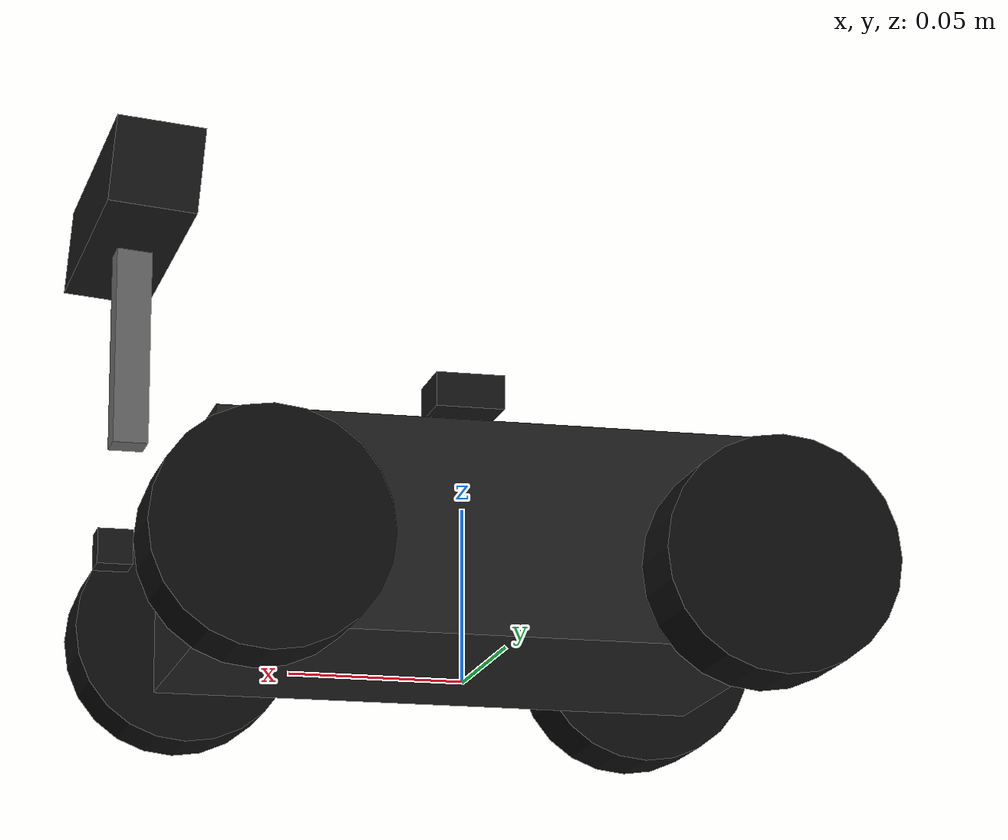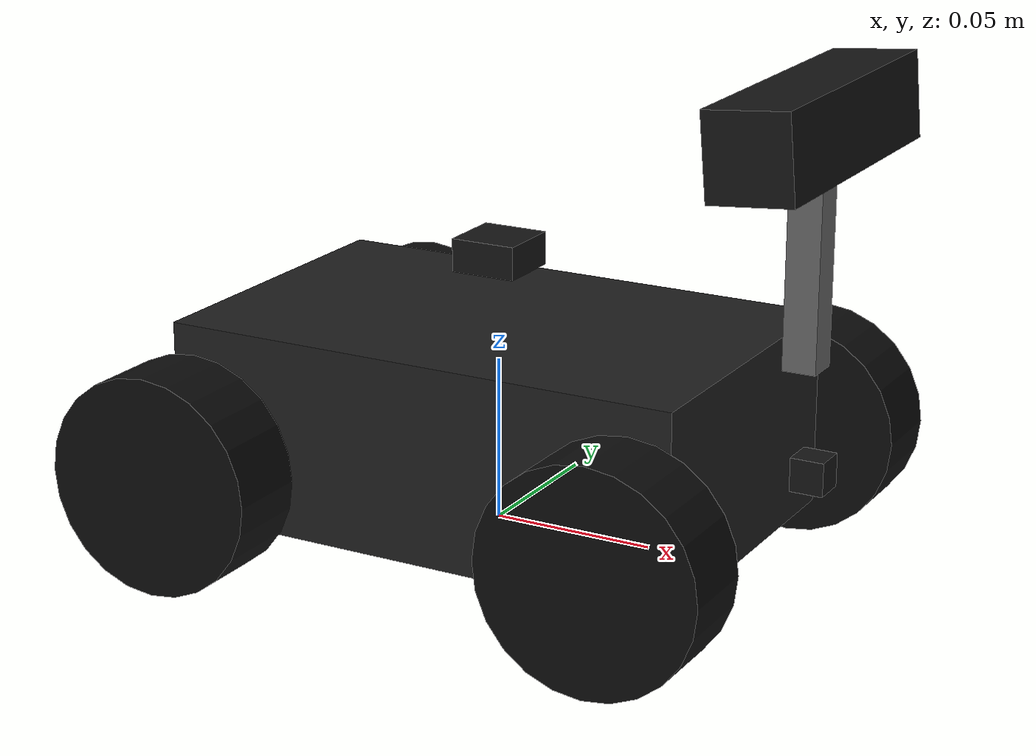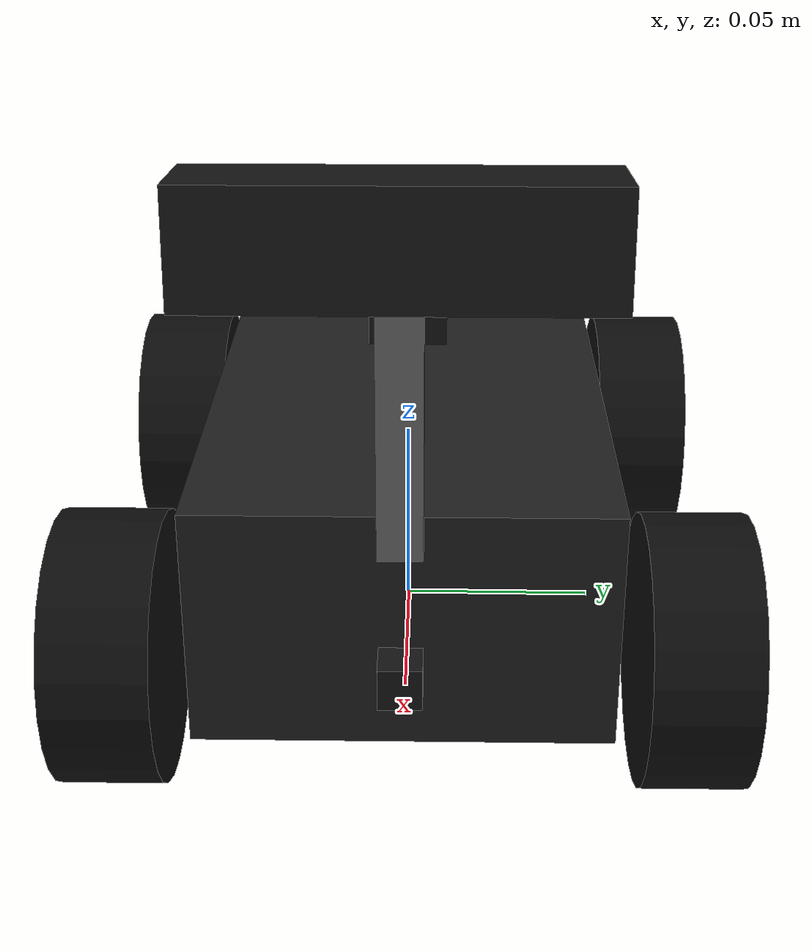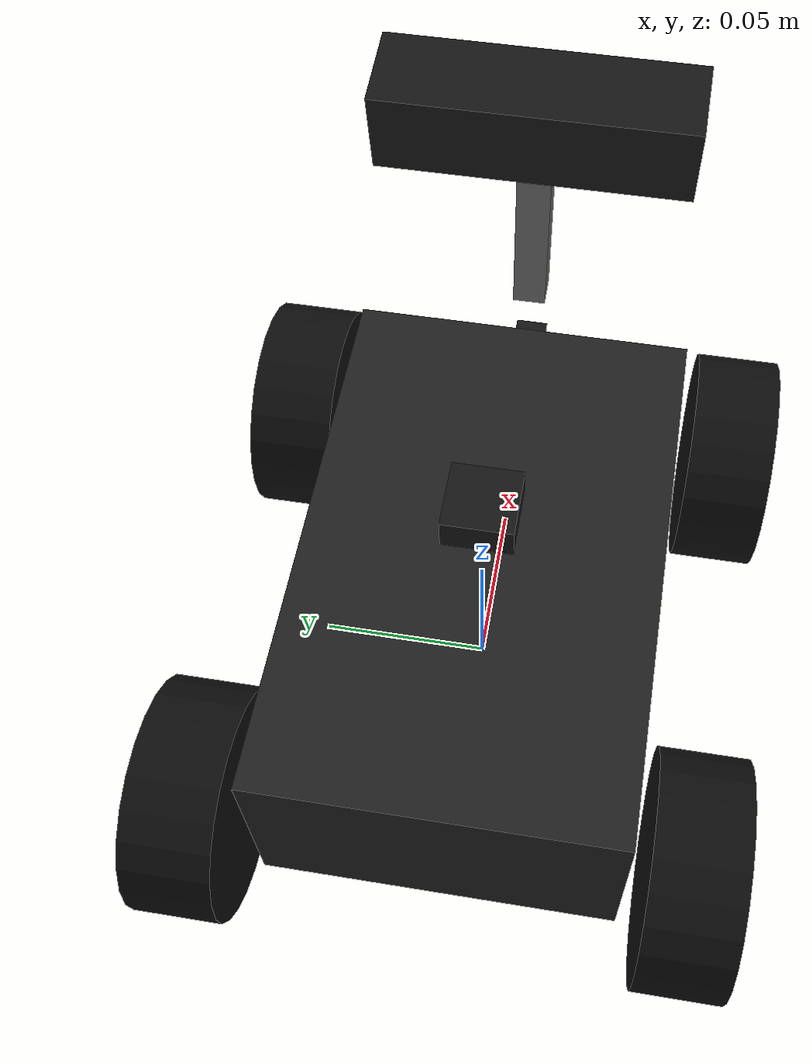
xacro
<?xml version="1.0"?>
<robot name="custom_bot" xmlns:xacro="http://www.ros.org/wiki/xacro">

  <!-- PARAMETERS - estimated from photo, adjust once you measure   -->
  <!-- the real chassis with calipers/tape measure                  -->
  <xacro:property name="base_length" value="0.161"/>  <!-- chassis STEP bbox ~161 mm (unreliable: raw STEP points) -->
  <xacro:property name="base_width"  value="0.102"/>  <!-- chassis STEP bbox ~102 mm body; wheels sit outside it -->
  <xacro:property name="base_height" value="0.06"/>
  <xacro:property name="base_mass"   value="1.5"/>    <!-- kg, board stack + frame -->

  <xacro:property name="wheel_radius" value="0.03305"/>  <!-- caliper: 66.1 mm diameter -->
  <xacro:property name="wheel_width"  value="0.0252"/> <!-- caliper: 25.2 mm -->
  <xacro:property name="wheel_mass"   value="0.08"/>  <!-- kg -->

  <xacro:property name="wheel_x_offset" value="0.07"/>  <!-- still a guess: measure fore/aft axle distance from chassis centre -->
  <xacro:property name="wheel_y_offset" value="0.0685"/> <!-- caliper: 137 mm track (tire centre to tire centre) / 2 -->
  <xacro:property name="wheel_z_offset" value="-0.01"/>

  <xacro:property name="camera_height_above_floor" value="0.132"/>
  <xacro:property name="camera_mount_height" value="${camera_height_above_floor - wheel_radius - base_height/2}"/>
  <xacro:property name="camera_x_offset" value="0.0969"/>
  <xacro:property name="camera_pitch" value="${-5 * pi / 180}"/>

  <!-- STEREO RIG. Baseline 0.0775 m comes from the stereo calibration (ruler check: ~75 mm, within 3 percent).
       The two imagers sit at +/- baseline/2 about the rig centre. -->
  <xacro:property name="stereo_baseline" value="0.0783"/>
  <xacro:property name="stereo_hfov"     value="1.5708"/>
  <xacro:property name="stereo_width"    value="640"/>
  <xacro:property name="stereo_height"   value="480"/>
  <xacro:property name="stereo_fps"      value="20.0"/>

  <!-- GPS antenna sits top-center, clear sky view. Placeholder height,
       adjust once the hardware team picks a final enclosure/mast. -->
  <xacro:property name="gps_z_offset" value="${base_height/2 + 0.02}"/>

  <!-- MATERIALS                                                     -->
  <material name="chassis_dark"><color rgba="0.12 0.12 0.12 1"/></material>
  <material name="wheel_yellow"><color rgba="0.9 0.8 0.1 1"/></material>
  <material name="wheel_black"><color rgba="0.05 0.05 0.05 1"/></material>
  <material name="sensor_black"><color rgba="0.08 0.08 0.08 1"/></material>
  <material name="bracket_gray"><color rgba="0.4 0.4 0.4 1"/></material>

  <!-- MACRO: WHEEL (yellow rim + black tire, matches photo)         -->
  <xacro:macro name="wheel" params="prefix x_reflect y_reflect">
    <link name="${prefix}_wheel_link">
      <visual>
        <origin xyz="0 0 0" rpy="1.5708 0 0"/>
        <geometry><cylinder radius="${wheel_radius}" length="${wheel_width}"/></geometry>
        <material name="wheel_black"/>
      </visual>
      <collision>
        <origin xyz="0 0 0" rpy="1.5708 0 0"/>
        <geometry><cylinder radius="${wheel_radius}" length="${wheel_width}"/></geometry>
      </collision>
      <inertial>
        <mass value="${wheel_mass}"/>
        <inertia ixx="0.00003" ixy="0" ixz="0" iyy="0.00003" iyz="0" izz="0.00003"/>
      </inertial>
    </link>

    <joint name="${prefix}_wheel_joint" type="continuous">
      <parent link="base_link"/>
      <child link="${prefix}_wheel_link"/>
      <origin xyz="${x_reflect*wheel_x_offset} ${y_reflect*wheel_y_offset} ${wheel_z_offset}" rpy="0 0 0"/>
      <axis xyz="0 1 0"/>
    </joint>
  </xacro:macro>

  <!-- BASE                                                          -->
  <link name="base_footprint"/>

  <link name="base_link">
    <visual>
      <geometry><box size="${base_length} ${base_width} ${base_height}"/></geometry>
      <material name="chassis_dark"/>
    </visual>
    <collision>
      <geometry><box size="${base_length} ${base_width} ${base_height}"/></geometry>
    </collision>
    <inertial>
      <mass value="${base_mass}"/>
      <inertia ixx="0.004" ixy="0" ixz="0" iyy="0.006" iyz="0" izz="0.008"/>
    </inertial>
  </link>

  <joint name="base_joint" type="fixed">
    <parent link="base_footprint"/>
    <child link="base_link"/>
    <origin xyz="0 0 ${wheel_radius}" rpy="0 0 0"/>
  </joint>

  <!-- Four independently driven wheels, wide stance like the photo -->
  <xacro:wheel prefix="front_left"  x_reflect="1"  y_reflect="1"/>
  <xacro:wheel prefix="front_right" x_reflect="1"  y_reflect="-1"/>
  <xacro:wheel prefix="rear_left"   x_reflect="-1" y_reflect="1"/>
  <xacro:wheel prefix="rear_right"  x_reflect="-1" y_reflect="-1"/>

  <!-- CAMERA MOUNT - raised bracket + camera, front of chassis      -->
  <link name="camera_bracket_link">
    <visual>
      <geometry><box size="0.01 0.01 ${camera_mount_height}"/></geometry>
      <material name="bracket_gray"/>
    </visual>
  </link>
  <joint name="camera_bracket_joint" type="fixed">
    <parent link="base_link"/>
    <child link="camera_bracket_link"/>
    <origin xyz="${camera_x_offset} 0 ${base_height/2 + camera_mount_height/2}" rpy="0 0 0"/>
  </joint>

  <link name="camera_link">
    <visual>
      <geometry><box size="0.025 0.09 0.025"/></geometry>
      <material name="sensor_black"/>
    </visual>
    <collision>
      <geometry><box size="0.025 0.09 0.025"/></geometry>
    </collision>
    <inertial>
      <mass value="0.05"/>
      <inertia ixx="0.00001" ixy="0" ixz="0" iyy="0.00001" iyz="0" izz="0.00001"/>
    </inertial>
  </link>
  <joint name="camera_joint" type="fixed">
    <parent link="camera_bracket_link"/>
    <child link="camera_link"/>
    <origin xyz="0 0 ${camera_mount_height/2}" rpy="0 ${camera_pitch} 0"/>
  </joint>

  <!-- STEREO PAIR: camera_link is the rig's center; the two imagers   -->
  <!-- sit at +/- stereo_baseline/2 along its Y axis (left = +Y, ROS   -->
  <!-- convention). Each imager is an x-forward link with a child      -->
  <!-- *_optical_link carrying the z-forward optical convention.       -->
  <!-- stereo_camera_node stamps its images with these optical frames  -->
  <!-- (camera_left_optical_link / camera_right_optical_link).         -->
  <xacro:macro name="stereo_imager" params="side y_offset">
    <link name="camera_${side}_link">
      <inertial>
        <mass value="0.01"/>
        <inertia ixx="0.000001" ixy="0" ixz="0" iyy="0.000001" iyz="0" izz="0.000001"/>
      </inertial>
    </link>
    <joint name="camera_${side}_joint" type="fixed">
      <parent link="camera_link"/>
      <child link="camera_${side}_link"/>
      <origin xyz="0 ${y_offset} 0" rpy="0 0 0"/>
    </joint>

    <link name="camera_${side}_optical_link"/>
    <joint name="camera_${side}_optical_joint" type="fixed">
      <parent link="camera_${side}_link"/>
      <child link="camera_${side}_optical_link"/>
      <origin xyz="0 0 0" rpy="${-pi/2} 0 ${-pi/2}"/>
    </joint>
  </xacro:macro>

  <xacro:stereo_imager side="left"  y_offset="${stereo_baseline/2}"/>
  <xacro:stereo_imager side="right" y_offset="${-stereo_baseline/2}"/>

  <!-- IMU                                                           -->
  <link name="imu_link">
    <inertial>
      <mass value="0.001"/>
      <inertia ixx="0.000001" ixy="0" ixz="0" iyy="0.000001" iyz="0" izz="0.000001"/>
    </inertial>
  </link>
  <joint name="imu_joint" type="fixed">
    <parent link="base_link"/>
    <child link="imu_link"/>
    <origin xyz="0 0 0" rpy="0 0 0"/>
  </joint>

  <!-- TIME-OF-FLIGHT (VL53L1X) - FRONT                              -->
  <!-- Mount position is a placeholder: hardware team hasn't picked  -->
  <!-- final placement yet. Currently sits front-center at chassis   -->
  <!-- edge height. Update x/y/z below once that's decided.          -->
  <xacro:property name="tof_x_offset" value="${base_length/2 + 0.02}"/>
  <xacro:property name="tof_z_offset" value="0.0"/>

  <link name="tof_front_link">
    <visual>
      <geometry><box size="0.01 0.01 0.01"/></geometry>
      <material name="sensor_black"/>
    </visual>
    <inertial>
      <mass value="0.005"/>
      <inertia ixx="0.000001" ixy="0" ixz="0" iyy="0.000001" iyz="0" izz="0.000001"/>
    </inertial>
  </link>
  <joint name="tof_front_joint" type="fixed">
    <parent link="base_link"/>
    <child link="tof_front_link"/>
    <origin xyz="${tof_x_offset} 0 ${tof_z_offset}" rpy="0 0 0"/>
  </joint>

  <!-- GPS - top-center mount, placeholder position                 -->
  <!-- Mount position is a placeholder like the ToF: hardware team   -->
  <!-- hasn't picked final enclosure placement yet. Sensor/plugin    -->
  <!-- block comes in a later step; this just establishes the        -->
  <!-- frame so TF is correct first.                                 -->
  <link name="gps_link">
    <visual>
      <geometry><box size="0.02 0.02 0.01"/></geometry>
      <material name="sensor_black"/>
    </visual>
    <inertial>
      <mass value="0.01"/>
      <inertia ixx="0.000001" ixy="0" ixz="0" iyy="0.000001" iyz="0" izz="0.000001"/>
    </inertial>
  </link>
  <joint name="gps_joint" type="fixed">
    <parent link="base_link"/>
    <child link="gps_link"/>
    <origin xyz="0 0 ${gps_z_offset}" rpy="0 0 0"/>
  </joint>

</robot>
